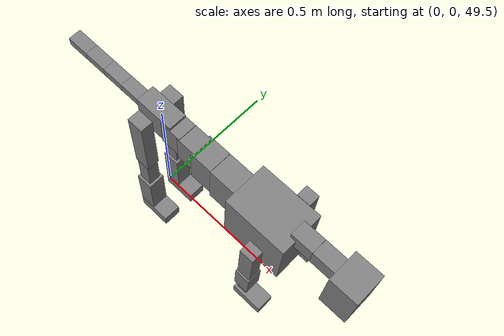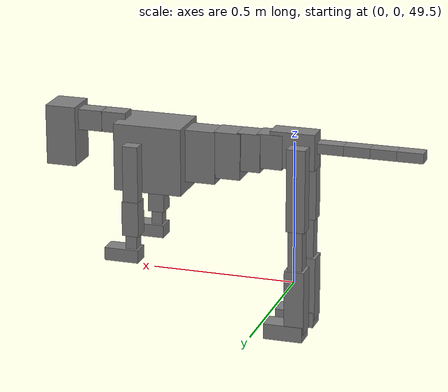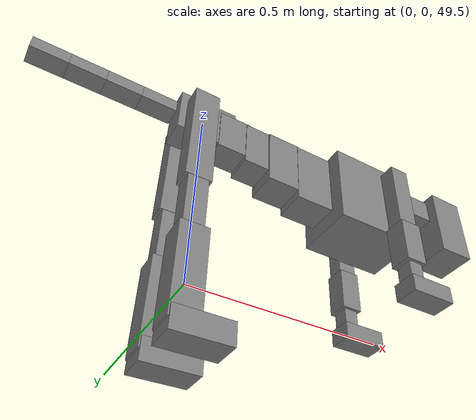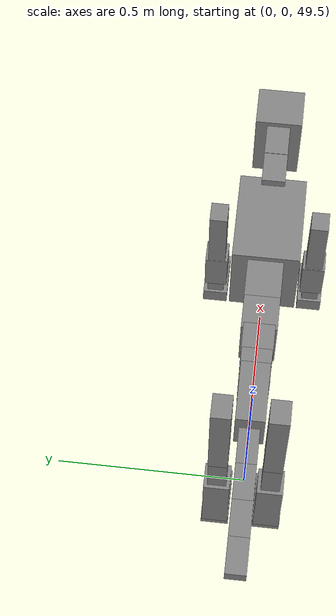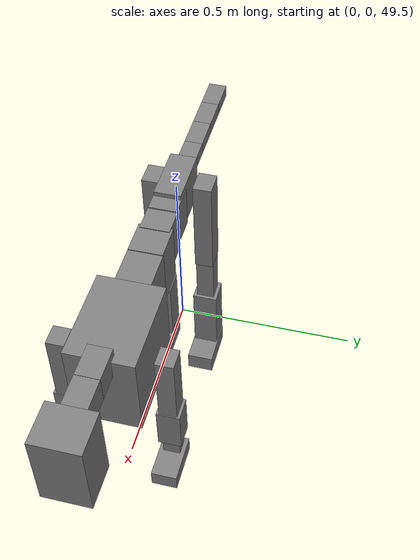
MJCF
<mujoco model="dog">

    <default>
        <joint armature="0.02" stiffness="1" damping="0.2" limited="true"/>
        <geom condim="3" friction="1 0.05 0.05" margin="0.01"/>
        <motor ctrllimited="true" ctrlrange="-1.0 1.0" forcelimited="true" gear="50"/>
    </default>

    <compiler inertiafromgeom="true" angle="radian"/>

    <option timestep="0.016" iterations="50" tolerance="1e-10" solver="Newton" jacobian="dense" cone="pyramidal"/>

    <size nconmax="20000" njmax="60000" nstack="5000000"/>
    <visual>
        <map force="0.1" zfar="30"/>
        <rgba haze="0.15 0.25 0.35 1"/>
        <quality shadowsize="2048"/>
        <global offwidth="800" offheight="800"/>
    </visual>

    <asset>
        <texture type="skybox" builtin="gradient" rgb1="0.3 0.5 0.7" rgb2="0 0 0" width="512" height="512"/>
        <texture name="texplane" type="2d" builtin="checker" rgb1=".2 .3 .4" rgb2=".1 0.15 0.2" width="512" height="512"
                 mark="cross" markrgb=".8 .8 .8"/>
        <texture name="texgeom" type="cube" builtin="flat" mark="cross" width="127" height="1278" rgb1="0.8 0.6 0.4"
                 rgb2="0.8 0.6 0.4" markrgb="1 1 1" random="0.01"/>

        <material name="matplane" reflectance="0.3" texture="texplane" texrepeat="1 1" texuniform="true"/>
        <material name="matgeom" texture="texgeom" texuniform="true" rgba="0.8 0.6 .4 1"/>
    </asset>

    <worldbody>
        <geom name="floor" pos="0 0 0" size="0 0 .25" type="plane" material="matplane" condim="3"/>

        <light directional="false" diffuse=".2 .2 .2" specular="0 0 0" pos="0 0 5" dir="0 0 -1" castshadow="false"/>
        <light mode="targetbodycom" target="torso" directional="false" diffuse=".8 .8 .8" specular="0.3 0.3 0.3"
               pos="0 0 4.0" dir="0 0 -1"/>

        <body name="root" pos="0 0 50">
            <freejoint name="root_1"/>
            <geom type="box" pos="0 0 -0.02" size="0.0774  0.0358  0.063" density="2030"/>

            <body name="spine1" pos="0.054 0 0">
                <joint name="spine1_y" axis="0 1 0" range="0 0.7" limited="true"/>
                <geom type="box" pos="0.02375 0 -0.03" size="0.04375  0.0375  0.05985" density="2030"/>

                <body name="spine2" pos="0.0612 0 0">
                    <joint name="spine2_y" axis="0 1 0" range="-0.15 0.15" limited="true"/>
                    <geom type="box" pos="0.03555  0  -0.04" size="0.04055  0.039  0.06615" density="2030"/>

                    <body name="spine3" pos="0.0730 0 0">
                        <joint name="spine3_y" axis="0 1 0" range="-0.15 0.15" limited="true"/>
                        <geom type="box" pos="0.03555  0  -0.057" size="0.04555  0.0445  0.081" density="2030"/>

                        <body name="spine4" pos="0.0780 0 0">
                            <joint name="spine4_y" axis="0 1 0" range="-0.15 0.15" limited="true"/>
                            <geom type="box" pos="0.05265  0  -0.07" size="0.05265  0.045  0.09135" density="2030"/>

                            <body name="torso" pos="0.1082 0 0">
                                <joint name="torso_y" axis="0 1 0" range="-0.15 0.15" limited="true"/>
                                <geom type="box" pos="0.11925  0  -0.085" size="0.11925  0.085  0.11745"
                                      density="2030"/>

                                <body name="neck1" pos="0.2160  0   0.0180">
                                    <joint name="neck1_y" axis="0 1 0" range="-1.2  -1" limited="true"/>
                                    <geom type="box" pos="0.0423  0  0" size="0.0423  0.03  0.036" density="2325"/>

                                    <body name="neck2" pos="0.0853  0  0">
                                        <joint name="neck2_y" axis="0 1 0" range="0.1  0" limited="true"/>
                                        <geom type="box" pos="0.0423  0  0" size="0.0423  0.03  0.036" density="2325"/>

                                        <body name="head" pos="0.0853  0  0">
                                            <joint name="head_y" axis="0 1 0" range="-0.3  -0.2" limited="true"/>
                                            <geom type="box" pos="0.0531  0  -0.055" size="0.0531  0.06  0.1044"
                                                  density="4030"/>

                                        </body>
                                    </body>
                                </body>

                                <body name="front_shoulder" pos="0.156  0   -0.0480">
                                    <joint name="front_shoulder_y" axis="0 1 0" range="-1 1.5" limited="true"/>
                                    <geom type="box" pos="0 0.13 -0.0839" size="0.0265  0.0227  0.1106" density="1158"/>
                                    <geom type="box" pos="0 -0.13 -0.0839" size="0.0265  0.0227  0.1106"
                                          density="1158"/>

                                    <body name="front_elbow" pos="0  0  -0.1679">
                                        <joint name="front_elbow_y" axis="0 1 0" range="-2 0" limited="true"/>
                                        <geom type="box" pos="0 0.13 -0.0601" size="0.0290  0.0296  0.0601"
                                              density="1081"/>
                                        <geom type="box" pos="0 -0.13 -0.0601" size="0.0290  0.0296  0.0601"
                                              density="1081"/>

                                        <body name="front_wrist" pos="0  0  -0.1201">
                                            <joint name="front_wrist_y" axis="0 1 0" range="-0.2 0" limited="true"/>
                                            <geom type="box" pos="0 0.13 -0.0319" size="0.0197  0.0219  0.0450"
                                                  density="1664"/>
                                            <geom type="box" pos="0 -0.13 -0.0319" size="0.0197  0.0219  0.0450"
                                                  density="1664"/>

                                            <body name="front_finger_end" pos="0  0  -0.0637">
                                                <joint name="front_finger_y" axis="0 1 0" range="-0.4 1"
                                                       limited="true"/>
                                                <geom type="box" pos="0.0325  0.13  -0.0077"
                                                      size="0.0596  0.0325  0.0227" density="1515"/>
                                                <geom type="box" pos="0.0325  -0.13  -0.0077"
                                                      size="0.0596  0.0325  0.0227" density="1515"/>

                                            </body>

                                        </body>
                                    </body>
                                </body>

                            </body>
                        </body>
                    </body>
                </body>
            </body>

            <body name="back_hip" pos="-0.03 0 -0.018">
                <joint name="back_hip_y" axis="0 1 0" range="-1.5 0.3" limited="true"/>
                <geom type="box" pos="0 0.07 -0.1213" size="0.0323  0.0253  0.1441" density="1154"/>
                <geom type="box" pos="0 -0.07 -0.1213" size="0.0323  0.0253  0.1441" density="1154"/>

                <body name="back_knee" pos="0  0  -0.2425">
                    <joint name="back_knee_y" axis="0 1 0" range="0 2.8" limited="true"/>
                    <geom type="box" pos="0 0.07 -0.0858" size="0.0252  0.0248  0.1013" density="1227"/>
                    <geom type="box" pos="0 -0.07 -0.0858" size="0.0252  0.0248  0.1013" density="1227"/>

                    <body name="back_ankle" pos="0  0  -0.1716">
                        <joint name="back_ankle_y" axis="0 1 0" range="-2.2 0" limited="true"/>
                        <geom type="box" pos="0 0.07 -0.1007" size="0.0344  0.0344  0.1119" density="1284"/>
                        <geom type="box" pos="0 -0.07 -0.1007" size="0.0344  0.0344  0.1119" density="1284"/>

                        <body name="back_toe_end" pos="0  0  -0.2014">
                            <joint name="back_toe_y" axis="0 1 0" range="-0.4 1" limited="true"/>
                            <geom type="box" pos="0.0370  0.07  -0.0123" size="0.0678  0.0370  0.0273" density="1515"/>
                            <geom type="box" pos="0.0370  -0.07  -0.0123" size="0.0678  0.0370  0.0273" density="1515"/>

                        </body>
                    </body>
                </body>
            </body>

            <body name="tail1" pos="-0.074 0 -0.006">
                <joint name="tail1_y" axis="0 1 0" range="-0.2 0.2" limited="true"/>
                <geom type="box" pos="-0.0536  0  0" size="0.045  0.025  0.0175" density="1587"/>

                <body name="tail2" pos="-0.09 0 0">
                    <joint name="tail2_y" axis="0 1 0" range="-0.2 0.2" limited="true"/>
                    <geom type="box" pos="-0.0536  0  0" size="0.045  0.025  0.0175" density="1587"/>

                    <body name="tail3" pos="-0.09 0 0">
                        <joint name="tail3_y" axis="0 1 0" range="-0.2 0.2" limited="true"/>
                        <geom type="box" pos="-0.0536  0  0" size="0.045  0.025  0.0175" density="1587"/>

                        <body name="tail4" pos="-0.09 0 0">
                            <joint name="tail4_y" axis="0 1 0" range="-0.2 0.2" limited="true"/>
                            <geom type="box" pos="-0.0536  0  0" size="0.045  0.025  0.0175" density="1587"/>

                        </body>
                    </body>
                </body>
            </body>
        </body>
    </worldbody>

    <actuator>
        <motor joint="spine1_y" forcerange="-150 150     "/>
        <motor joint="spine2_y" forcerange="-150 150     "/>
        <motor joint="spine3_y" forcerange="-150 150     "/>
        <motor joint="spine4_y" forcerange="-150 150     "/>
        <motor joint="torso_y" forcerange="-150 150     "/>
        <motor joint="neck1_y" forcerange="-100 100       "/>
        <motor joint="neck2_y" forcerange="-100 100       "/>
        <motor joint="head_y" forcerange="-150 150       "/>
        <motor joint="front_shoulder_y" forcerange="-111.06 140.16"/>
        <motor joint="front_elbow_y" forcerange="-147.71 167.69"/>
        <motor joint="front_wrist_y" forcerange="-61.71 113.24"/>
        <motor joint="front_finger_y" forcerange="-72.72 60.52"/>
        <motor joint="back_hip_y" forcerange="-261.64 276.16"/>
        <motor joint="back_knee_y" forcerange="-310.87 249.90"/>
        <motor joint="back_angle_y" forcerange="-211.90 237.75"/>
        <motor joint="back_toe_y" forcerange="-129.15 86.84"/>
        <motor joint="tail1_y" forcerange="-50 50     "/>
        <motor joint="tail2_y" forcerange="-50 50     "/>
        <motor joint="tail3_y" forcerange="-50 50     "/>
        <motor joint="tail4_y" forcerange="-50 50     "/>
    </actuator>
</mujoco>
